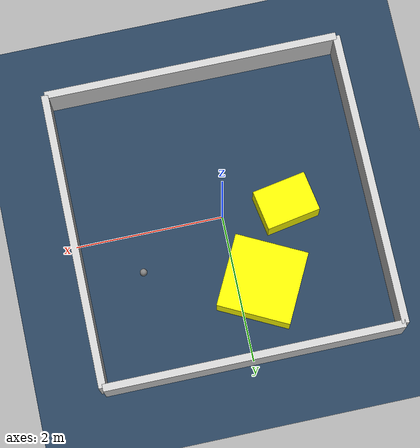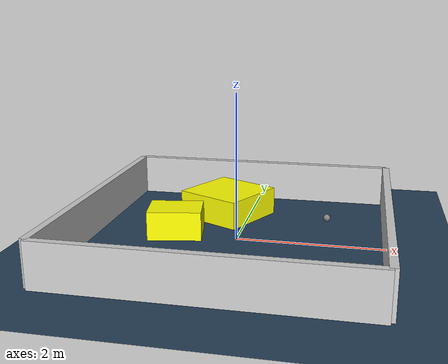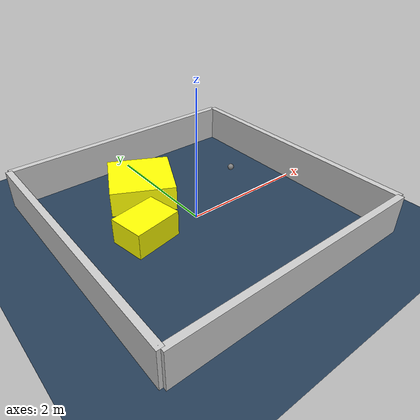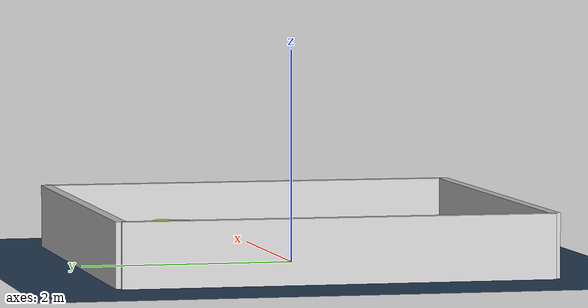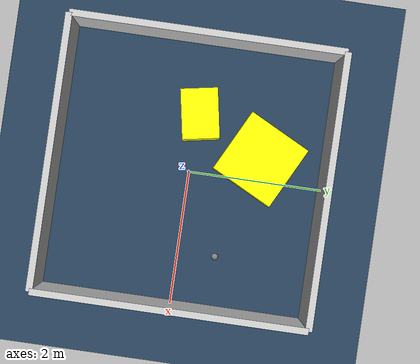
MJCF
<?xml version="1.0" ?>
<mujoco model="generated_environment">
  <option timestep="0.01" integrator="RK4" cone="elliptic"/>
  <default>
    <geom density="1"/>
  </default>
  <asset>
    <texture builtin="gradient" height="3072" rgb1="0.3 0.5 0.7" rgb2="0 0 0" type="skybox" width="512"/>
    <texture builtin="checker" height="300" mark="edge" markrgb="0.8 0.8 0.8" name="groundplane" rgb1="0.2 0.3 0.4" rgb2="0.1 0.2 0.3" type="2d" width="300"/>
    <material name="groundplane" reflectance="0.2" texrepeat="5 5" texture="groundplane" texuniform="true"/>
    <material name="robot" rgba="0.0 1.0 0.0 1"/>
  </asset>
  <worldbody>
    <light dir="0 0 -1" directional="true" pos="0 0 1.5"/>
    <geom condim="4" friction="1.0 0.005 0.001" material="groundplane" name="floor" size="0 0 0.05" type="plane"/>
    <body name="walls">
      <geom name="wall_1" condim="4" pos="-2.0 0.0 0.3" rgba="0.800000011920929 0.800000011920929 0.800000011920929 1.0" size="0.05 2.0 0.3" type="box"/>
      <geom name="wall_2" condim="4" pos="2.0 0.0 0.3" rgba="0.800000011920929 0.800000011920929 0.800000011920929 1.0" size="0.05 2.0 0.3" type="box"/>
      <geom name="wall_3" condim="4" pos="0.0 -2.0 0.3" rgba="0.800000011920929 0.800000011920929 0.800000011920929 1.0" size="2.0 0.05 0.3" type="box"/>
      <geom name="wall_4" condim="4" pos="0.0 2.0 0.3" rgba="0.800000011920929 0.800000011920929 0.800000011920929 1.0" size="2.0 0.05 0.3" type="box"/>
    </body>
    <body name="robot">
      <joint name="joint_x" type="slide" pos="0 0 0" axis="1 0 0"/>
      <joint name="joint_y" type="slide" pos="0 0 0" axis="0 1 0"/>
      <geom name="robot" type="sphere" pos="1.1873790883515265 0.5565651709938186 0.2" size="0.05" mass="5." friction="1.0 0.005 0.0001" condim="4"/>
      <site name="sensor_ball"/>
    </body>
    <body name="obstacle_1_movable">
      <geom name="obstacle_1_movable" condim="4" pos="-0.8625831137644604 0.041003334308789885 0.2" euler="0 0 100.16782196517083" friction="1.0 0.005 0.001" rgba="1 1 0 1" size="0.2733873290220215 0.36884304859188843 0.2" type="box" mass="0.1"/>
      <joint type="free"/>
    </body>
    <body name="obstacle_2_movable">
      <geom name="obstacle_2_movable" condim="4" pos="-0.32792934446221533 1.0083112113231985 0.2" euler="0 0 153.05540636257425" friction="1.0 0.005 0.001" rgba="1 1 0 1" size="0.49870898101794603 0.4946908001579331 0.2" type="box" mass="0.1"/>
      <joint type="free"/>
    </body>
  </worldbody>
  <actuator>
    <motor name="actuator_x" joint="joint_x" gear="1" ctrlrange="-1 1"/>
    <motor name="actuator_y" joint="joint_y" gear="1" ctrlrange="-1 1"/>
  </actuator>
</mujoco>
